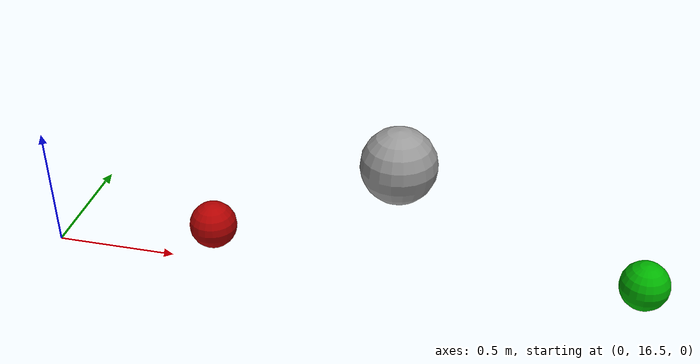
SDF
<sdf version="1.6">
 <world name="default">
  <include><uri>model://sun</uri></include>
  <model name="Small gate buoy (red) #6">
   <pose>0.5880899573410239 16.738688834714566 0 0 0 0</pose>
   <static>1</static>
   <link name="sphere">
    <inertial>
     <mass>1</mass>
     <inertia><ixx>0.06773</ixx><ixy>0</ixy><ixz>0</ixz><iyy>0.06773</iyy><iyz>0</iyz><izz>0.06773</izz></inertia>
    </inertial>
    <visual name="visual">
     <geometry><sphere><radius>0.1016</radius></sphere></geometry>
     <material>
      <lighting>1</lighting>
      <script><uri>file://media/materials/scripts/gazebo.material</uri><name>Gazebo/Grey</name></script>
      <shader type="pixel"><normal_map>__default__</normal_map></shader>
      <ambient>0.3 0.3 0.3 1</ambient>
      <diffuse>0.7 0 0 1</diffuse>
      <specular>0.01 0.01 0.01 1</specular>
      <emissive>0 0 0 1</emissive>
     </material>
    </visual>
    <collision name="collision">
     <geometry><sphere><radius>0.1016</radius></sphere></geometry>
     <surface>
      <friction>
       <ode><mu>1</mu><mu2>1</mu2><fdir1>0 0 0</fdir1><slip1>0</slip1><slip2>0</slip2></ode>
       <torsional>
        <coefficient>1</coefficient>
        <patch_radius>0</patch_radius>
        <surface_radius>0</surface_radius>
        <use_patch_radius>1</use_patch_radius>
        <ode><slip>0</slip></ode>
       </torsional>
      </friction>
      <bounce><restitution_coefficient>0</restitution_coefficient><threshold>1e+06</threshold></bounce>
      <contact>
       <collide_without_contact>0</collide_without_contact>
       <collide_without_contact_bitmask>1</collide_without_contact_bitmask>
       <collide_bitmask>1</collide_bitmask>
       <ode>
        <soft_cfm>0</soft_cfm>
        <soft_erp>0.2</soft_erp>
        <kp>1e+13</kp>
        <kd>1</kd>
        <max_vel>0.01</max_vel>
        <min_depth>0</min_depth>
       </ode>
       <bullet>
        <split_impulse>1</split_impulse>
        <split_impulse_penetration_threshold>-0.01</split_impulse_penetration_threshold>
        <soft_cfm>0</soft_cfm>
        <soft_erp>0.2</soft_erp>
        <kp>1e+13</kp>
        <kd>1</kd>
       </bullet>
      </contact>
     </surface>
    </collision>
   </link>
  </model>
  <model name="Small gate buoy (green) #6">
   <pose>2.388089957341024 16.738688834714566 0 0 0 0</pose>
   <static>1</static>
   <link name="sphere">
    <inertial>
     <mass>1</mass>
     <inertia><ixx>0.06773</ixx><ixy>0</ixy><ixz>0</ixz><iyy>0.06773</iyy><iyz>0</iyz><izz>0.06773</izz></inertia>
    </inertial>
    <visual name="visual">
     <geometry><sphere><radius>0.1016</radius></sphere></geometry>
     <material>
      <lighting>1</lighting>
      <script><uri>file://media/materials/scripts/gazebo.material</uri><name>Gazebo/Grey</name></script>
      <shader type="pixel"><normal_map>__default__</normal_map></shader>
      <ambient>0.3 0.3 0.3 1</ambient>
      <diffuse>0 0.7 0 1</diffuse>
      <specular>0.01 0.01 0.01 1</specular>
      <emissive>0 0 0 1</emissive>
     </material>
    </visual>
    <collision name="collision">
     <geometry><sphere><radius>0.1016</radius></sphere></geometry>
     <surface>
      <friction>
       <ode><mu>1</mu><mu2>1</mu2><fdir1>0 0 0</fdir1><slip1>0</slip1><slip2>0</slip2></ode>
       <torsional>
        <coefficient>1</coefficient>
        <patch_radius>0</patch_radius>
        <surface_radius>0</surface_radius>
        <use_patch_radius>1</use_patch_radius>
        <ode><slip>0</slip></ode>
       </torsional>
      </friction>
      <bounce><restitution_coefficient>0</restitution_coefficient><threshold>1e+06</threshold></bounce>
      <contact>
       <collide_without_contact>0</collide_without_contact>
       <collide_without_contact_bitmask>1</collide_without_contact_bitmask>
       <collide_bitmask>1</collide_bitmask>
       <ode>
        <soft_cfm>0</soft_cfm>
        <soft_erp>0.2</soft_erp>
        <kp>1e+13</kp>
        <kd>1</kd>
        <max_vel>0.01</max_vel>
        <min_depth>0</min_depth>
       </ode>
       <bullet>
        <split_impulse>1</split_impulse>
        <split_impulse_penetration_threshold>-0.01</split_impulse_penetration_threshold>
        <soft_cfm>0</soft_cfm>
        <soft_erp>0.2</soft_erp>
        <kp>1e+13</kp>
        <kd>1</kd>
       </bullet>
      </contact>
     </surface>
    </collision>
   </link>
  </model>
  <model name="Gate buoy (black) #6">
   <pose>1.2668083682792133 17.379169299555645 0 0 0 0</pose>
   <static>1</static>
   <link name="sphere">
    <inertial>
     <mass>1</mass>
     <inertia>
      <ixx>0.0135645</ixx>
      <ixy>0</ixy>
      <ixz>0</ixz>
      <iyy>0.0135645</iyy>
      <iyz>0</iyz>
      <izz>0.0135645</izz>
     </inertia>
    </inertial>
    <visual name="visual">
     <geometry><sphere><radius>0.18415</radius></sphere></geometry>
     <material>
      <lighting>1</lighting>
      <script><uri>file://media/materials/scripts/gazebo.material</uri><name>Gazebo/Grey</name></script>
      <shader type="pixel"><normal_map>__default__</normal_map></shader>
      <ambient>0.3 0.3 0.3 1</ambient>
      <diffuse>0 0 0 1</diffuse>
      <specular>0.01 0.01 0.01 1</specular>
      <emissive>0 0 0 1</emissive>
     </material>
    </visual>
    <collision name="collision">
     <geometry><sphere><radius>0.18415</radius></sphere></geometry>
     <surface>
      <friction>
       <ode><mu>1</mu><mu2>1</mu2><fdir1>0 0 0</fdir1><slip1>0</slip1><slip2>0</slip2></ode>
       <torsional>
        <coefficient>1</coefficient>
        <patch_radius>0</patch_radius>
        <surface_radius>0</surface_radius>
        <use_patch_radius>1</use_patch_radius>
        <ode><slip>0</slip></ode>
       </torsional>
      </friction>
      <bounce><restitution_coefficient>0</restitution_coefficient><threshold>1e+06</threshold></bounce>
      <contact>
       <collide_without_contact>0</collide_without_contact>
       <collide_without_contact_bitmask>1</collide_without_contact_bitmask>
       <collide_bitmask>1</collide_bitmask>
       <ode>
        <soft_cfm>0</soft_cfm>
        <soft_erp>0.2</soft_erp>
        <kp>1e+13</kp>
        <kd>1</kd>
        <max_vel>0.01</max_vel>
        <min_depth>0</min_depth>
       </ode>
       <bullet>
        <split_impulse>1</split_impulse>
        <split_impulse_penetration_threshold>-0.01</split_impulse_penetration_threshold>
        <soft_cfm>0</soft_cfm>
        <soft_erp>0.2</soft_erp>
        <kp>1e+13</kp>
        <kd>1</kd>
       </bullet>
      </contact>
     </surface>
    </collision>
   </link>
  </model>
 </world>
</sdf>
